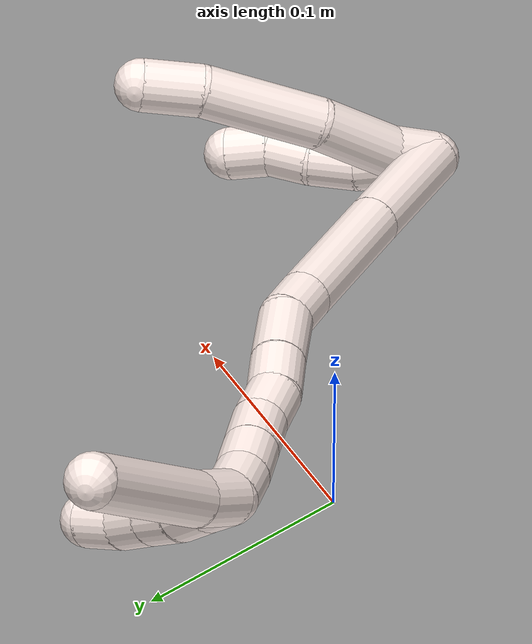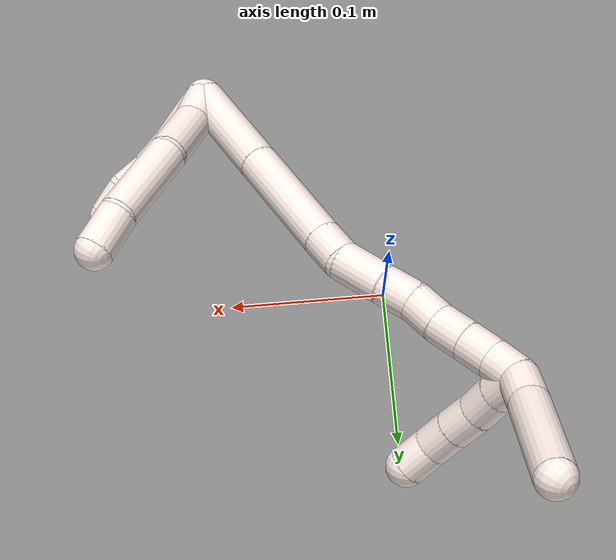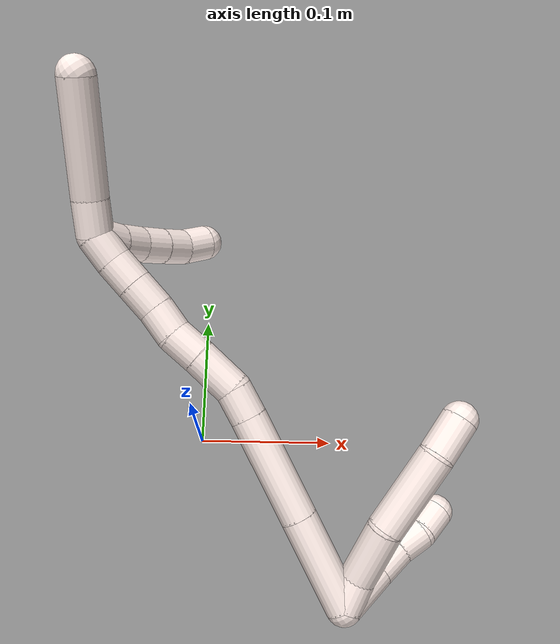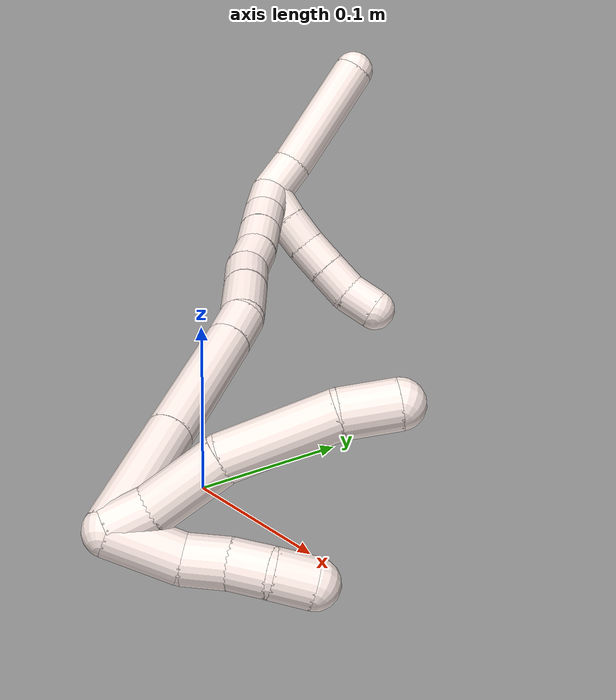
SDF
<sdf version="1.7">
 <world name="default">
  <model name="11">
   <static>0</static>
   <link name="11">
    <collision name="collision-cylinder-e_1_2_8">
     <pose>0.002705 0.009227 0.005712 -1.01653 0.244285 -0.136556</pose>
     <geometry><cylinder><radius>0.0125</radius><length>0.022368</length></cylinder></geometry>
     <surface>
      <friction><ode><mu>1.16</mu><mu2>1.16</mu2><slip1>0</slip1><slip2>0</slip2></ode></friction>
      <contact><ode><kp>1e+06</kp><kd>1</kd><max_vel>0</max_vel><min_depth>0.001</min_depth></ode></contact>
     </surface>
    </collision>
    <visual name="visual-cylinder-e_1_2_8">
     <pose>0.002705 0.009227 0.005712 -1.01653 0.244285 -0.136556</pose>
     <geometry><cylinder><radius>0.0125</radius><length>0.022368</length></cylinder></geometry>
     <material><ambient>1 0.933333 0.909804 1</ambient></material>
    </visual>
    <collision name="collision-cylinder-e_2_8_9">
     <pose>0.014883 0.033315 0.021964 -0.953837 0.479474 -0.251272</pose>
     <geometry><cylinder><radius>0.0125</radius><length>0.041068</length></cylinder></geometry>
     <surface>
      <friction><ode><mu>1.16</mu><mu2>1.16</mu2><slip1>0</slip1><slip2>0</slip2></ode></friction>
      <contact><ode><kp>1e+06</kp><kd>1</kd><max_vel>0</max_vel><min_depth>0.001</min_depth></ode></contact>
     </surface>
    </collision>
    <visual name="visual-cylinder-e_2_8_9">
     <pose>0.014883 0.033315 0.021964 -0.953837 0.479474 -0.251272</pose>
     <geometry><cylinder><radius>0.0125</radius><length>0.041068</length></cylinder></geometry>
     <material><ambient>1 0.933333 0.909804 1</ambient></material>
    </visual>
    <collision name="collision-cylinder-e_3_9_10">
     <pose>0.03363 0.073648 0.043055 -1.17812 0.324479 -0.217872</pose>
     <geometry><cylinder><radius>0.0125</radius><length>0.058181</length></cylinder></geometry>
     <surface>
      <friction><ode><mu>1.16</mu><mu2>1.16</mu2><slip1>0</slip1><slip2>0</slip2></ode></friction>
      <contact><ode><kp>1e+06</kp><kd>1</kd><max_vel>0</max_vel><min_depth>0.001</min_depth></ode></contact>
     </surface>
    </collision>
    <visual name="visual-cylinder-e_3_9_10">
     <pose>0.03363 0.073648 0.043055 -1.17812 0.324479 -0.217872</pose>
     <geometry><cylinder><radius>0.0125</radius><length>0.058181</length></cylinder></geometry>
     <material><ambient>1 0.933333 0.909804 1</ambient></material>
    </visual>
    <collision name="collision-cylinder-e_4_10_6">
     <pose>0.044432 0.112588 0.057818 -1.26761 0.107853 -0.079303</pose>
     <geometry><cylinder><radius>0.0125</radius><length>0.028383</length></cylinder></geometry>
     <surface>
      <friction><ode><mu>1.16</mu><mu2>1.16</mu2><slip1>0</slip1><slip2>0</slip2></ode></friction>
      <contact><ode><kp>1e+06</kp><kd>1</kd><max_vel>0</max_vel><min_depth>0.001</min_depth></ode></contact>
     </surface>
    </collision>
    <visual name="visual-cylinder-e_4_10_6">
     <pose>0.044432 0.112588 0.057818 -1.26761 0.107853 -0.079303</pose>
     <geometry><cylinder><radius>0.0125</radius><length>0.028383</length></cylinder></geometry>
     <material><ambient>1 0.933333 0.909804 1</ambient></material>
    </visual>
    <collision name="collision-cylinder-e_1_2_11">
     <pose>-0.004502 0.017984 -0.001513 -1.65474 -0.244452 0.265643</pose>
     <geometry><cylinder><radius>0.0125</radius><length>0.037201</length></cylinder></geometry>
     <surface>
      <friction><ode><mu>1.16</mu><mu2>1.16</mu2><slip1>0</slip1><slip2>0</slip2></ode></friction>
      <contact><ode><kp>1e+06</kp><kd>1</kd><max_vel>0</max_vel><min_depth>0.001</min_depth></ode></contact>
     </surface>
    </collision>
    <visual name="visual-cylinder-e_1_2_11">
     <pose>-0.004502 0.017984 -0.001513 -1.65474 -0.244452 0.265643</pose>
     <geometry><cylinder><radius>0.0125</radius><length>0.037201</length></cylinder></geometry>
     <material><ambient>1 0.933333 0.909804 1</ambient></material>
    </visual>
    <collision name="collision-cylinder-e_2_11_12">
     <pose>-0.008725 0.047148 -0.002425 -1.51706 0.024845 -0.023544</pose>
     <geometry><cylinder><radius>0.0125</radius><length>0.022398</length></cylinder></geometry>
     <surface>
      <friction><ode><mu>1.16</mu><mu2>1.16</mu2><slip1>0</slip1><slip2>0</slip2></ode></friction>
      <contact><ode><kp>1e+06</kp><kd>1</kd><max_vel>0</max_vel><min_depth>0.001</min_depth></ode></contact>
     </surface>
    </collision>
    <visual name="visual-cylinder-e_2_11_12">
     <pose>-0.008725 0.047148 -0.002425 -1.51706 0.024845 -0.023544</pose>
     <geometry><cylinder><radius>0.0125</radius><length>0.022398</length></cylinder></geometry>
     <material><ambient>1 0.933333 0.909804 1</ambient></material>
    </visual>
    <collision name="collision-cylinder-e_3_12_13">
     <pose>-0.007651 0.068258 -0.00306 -1.69464 0.079395 -0.089877</pose>
     <geometry><cylinder><radius>0.0125</radius><length>0.020079</length></cylinder></geometry>
     <surface>
      <friction><ode><mu>1.16</mu><mu2>1.16</mu2><slip1>0</slip1><slip2>0</slip2></ode></friction>
      <contact><ode><kp>1e+06</kp><kd>1</kd><max_vel>0</max_vel><min_depth>0.001</min_depth></ode></contact>
     </surface>
    </collision>
    <visual name="visual-cylinder-e_3_12_13">
     <pose>-0.007651 0.068258 -0.00306 -1.69464 0.079395 -0.089877</pose>
     <geometry><cylinder><radius>0.0125</radius><length>0.020079</length></cylinder></geometry>
     <material><ambient>1 0.933333 0.909804 1</ambient></material>
    </visual>
    <collision name="collision-cylinder-e_4_13_5">
     <pose>-0.008835 0.088154 -0.004121 -1.55321 -0.196132 0.192735</pose>
     <geometry><cylinder><radius>0.0125</radius><length>0.020322</length></cylinder></geometry>
     <surface>
      <friction><ode><mu>1.16</mu><mu2>1.16</mu2><slip1>0</slip1><slip2>0</slip2></ode></friction>
      <contact><ode><kp>1e+06</kp><kd>1</kd><max_vel>0</max_vel><min_depth>0.001</min_depth></ode></contact>
     </surface>
    </collision>
    <visual name="visual-cylinder-e_4_13_5">
     <pose>-0.008835 0.088154 -0.004121 -1.55321 -0.196132 0.192735</pose>
     <geometry><cylinder><radius>0.0125</radius><length>0.020322</length></cylinder></geometry>
     <material><ambient>1 0.933333 0.909804 1</ambient></material>
    </visual>
    <collision name="collision-cylinder-e_1_2_14">
     <pose>-0.00371 0.007182 0.033061 -0.213908 -0.109238 0.01174</pose>
     <geometry><cylinder><radius>0.0125</radius><length>0.06807</length></cylinder></geometry>
     <surface>
      <friction><ode><mu>1.16</mu><mu2>1.16</mu2><slip1>0</slip1><slip2>0</slip2></ode></friction>
      <contact><ode><kp>1e+06</kp><kd>1</kd><max_vel>0</max_vel><min_depth>0.001</min_depth></ode></contact>
     </surface>
    </collision>
    <visual name="visual-cylinder-e_1_2_14">
     <pose>-0.00371 0.007182 0.033061 -0.213908 -0.109238 0.01174</pose>
     <geometry><cylinder><radius>0.0125</radius><length>0.06807</length></cylinder></geometry>
     <material><ambient>1 0.933333 0.909804 1</ambient></material>
    </visual>
    <collision name="collision-cylinder-e_2_14_15">
     <pose>-0.011825 0.022168 0.102455 -0.211594 -0.117969 0.012542</pose>
     <geometry><cylinder><radius>0.0125</radius><length>0.074843</length></cylinder></geometry>
     <surface>
      <friction><ode><mu>1.16</mu><mu2>1.16</mu2><slip1>0</slip1><slip2>0</slip2></ode></friction>
      <contact><ode><kp>1e+06</kp><kd>1</kd><max_vel>0</max_vel><min_depth>0.001</min_depth></ode></contact>
     </surface>
    </collision>
    <visual name="visual-cylinder-e_2_14_15">
     <pose>-0.011825 0.022168 0.102455 -0.211594 -0.117969 0.012542</pose>
     <geometry><cylinder><radius>0.0125</radius><length>0.074843</length></cylinder></geometry>
     <material><ambient>1 0.933333 0.909804 1</ambient></material>
    </visual>
    <collision name="collision-cylinder-e_3_15_16">
     <pose>-0.017461 0.031921 0.14928 -0.183539 -0.114896 0.010585</pose>
     <geometry><cylinder><radius>0.0125</radius><length>0.021486</length></cylinder></geometry>
     <surface>
      <friction><ode><mu>1.16</mu><mu2>1.16</mu2><slip1>0</slip1><slip2>0</slip2></ode></friction>
      <contact><ode><kp>1e+06</kp><kd>1</kd><max_vel>0</max_vel><min_depth>0.001</min_depth></ode></contact>
     </surface>
    </collision>
    <visual name="visual-cylinder-e_3_15_16">
     <pose>-0.017461 0.031921 0.14928 -0.183539 -0.114896 0.010585</pose>
     <geometry><cylinder><radius>0.0125</radius><length>0.021486</length></cylinder></geometry>
     <material><ambient>1 0.933333 0.909804 1</ambient></material>
    </visual>
    <collision name="collision-cylinder-e_4_16_17">
     <pose>-0.022513 0.032095 0.174771 0.117713 -0.247726 -0.014672</pose>
     <geometry><cylinder><radius>0.0125</radius><length>0.031156</length></cylinder></geometry>
     <surface>
      <friction><ode><mu>1.16</mu><mu2>1.16</mu2><slip1>0</slip1><slip2>0</slip2></ode></friction>
      <contact><ode><kp>1e+06</kp><kd>1</kd><max_vel>0</max_vel><min_depth>0.001</min_depth></ode></contact>
     </surface>
    </collision>
    <visual name="visual-cylinder-e_4_16_17">
     <pose>-0.022513 0.032095 0.174771 0.117713 -0.247726 -0.014672</pose>
     <geometry><cylinder><radius>0.0125</radius><length>0.031156</length></cylinder></geometry>
     <material><ambient>1 0.933333 0.909804 1</ambient></material>
    </visual>
    <collision name="collision-cylinder-e_5_17_18">
     <pose>-0.029547 0.028794 0.20019 0.145538 -0.296269 -0.021756</pose>
     <geometry><cylinder><radius>0.0125</radius><length>0.022024</length></cylinder></geometry>
     <surface>
      <friction><ode><mu>1.16</mu><mu2>1.16</mu2><slip1>0</slip1><slip2>0</slip2></ode></friction>
      <contact><ode><kp>1e+06</kp><kd>1</kd><max_vel>0</max_vel><min_depth>0.001</min_depth></ode></contact>
     </surface>
    </collision>
    <visual name="visual-cylinder-e_5_17_18">
     <pose>-0.029547 0.028794 0.20019 0.145538 -0.296269 -0.021756</pose>
     <geometry><cylinder><radius>0.0125</radius><length>0.022024</length></cylinder></geometry>
     <material><ambient>1 0.933333 0.909804 1</ambient></material>
    </visual>
    <collision name="collision-cylinder-e_6_18_19">
     <pose>-0.034924 0.028081 0.220708 -0.080535 -0.210268 0.008503</pose>
     <geometry><cylinder><radius>0.0125</radius><length>0.020717</length></cylinder></geometry>
     <surface>
      <friction><ode><mu>1.16</mu><mu2>1.16</mu2><slip1>0</slip1><slip2>0</slip2></ode></friction>
      <contact><ode><kp>1e+06</kp><kd>1</kd><max_vel>0</max_vel><min_depth>0.001</min_depth></ode></contact>
     </surface>
    </collision>
    <visual name="visual-cylinder-e_6_18_19">
     <pose>-0.034924 0.028081 0.220708 -0.080535 -0.210268 0.008503</pose>
     <geometry><cylinder><radius>0.0125</radius><length>0.020717</length></cylinder></geometry>
     <material><ambient>1 0.933333 0.909804 1</ambient></material>
    </visual>
    <collision name="collision-cylinder-e_7_19_20">
     <pose>-0.038824 0.028425 0.241337 0.044687 -0.163383 -0.003659</pose>
     <geometry><cylinder><radius>0.0125</radius><length>0.02137</length></cylinder></geometry>
     <surface>
      <friction><ode><mu>1.16</mu><mu2>1.16</mu2><slip1>0</slip1><slip2>0</slip2></ode></friction>
      <contact><ode><kp>1e+06</kp><kd>1</kd><max_vel>0</max_vel><min_depth>0.001</min_depth></ode></contact>
     </surface>
    </collision>
    <visual name="visual-cylinder-e_7_19_20">
     <pose>-0.038824 0.028425 0.241337 0.044687 -0.163383 -0.003659</pose>
     <geometry><cylinder><radius>0.0125</radius><length>0.02137</length></cylinder></geometry>
     <material><ambient>1 0.933333 0.909804 1</ambient></material>
    </visual>
    <collision name="collision-cylinder-e_8_20_21">
     <pose>-0.042345 0.027581 0.261788 0.037624 -0.177681 -0.003352</pose>
     <geometry><cylinder><radius>0.0125</radius><length>0.02017</length></cylinder></geometry>
     <surface>
      <friction><ode><mu>1.16</mu><mu2>1.16</mu2><slip1>0</slip1><slip2>0</slip2></ode></friction>
      <contact><ode><kp>1e+06</kp><kd>1</kd><max_vel>0</max_vel><min_depth>0.001</min_depth></ode></contact>
     </surface>
    </collision>
    <visual name="visual-cylinder-e_8_20_21">
     <pose>-0.042345 0.027581 0.261788 0.037624 -0.177681 -0.003352</pose>
     <geometry><cylinder><radius>0.0125</radius><length>0.02017</length></cylinder></geometry>
     <material><ambient>1 0.933333 0.909804 1</ambient></material>
    </visual>
    <collision name="collision-cylinder-e_9_21_1">
     <pose>-0.044804 0.027408 0.281765 -0.01997 -0.067142 0.000671</pose>
     <geometry><cylinder><radius>0.0125</radius><length>0.020165</length></cylinder></geometry>
     <surface>
      <friction><ode><mu>1.16</mu><mu2>1.16</mu2><slip1>0</slip1><slip2>0</slip2></ode></friction>
      <contact><ode><kp>1e+06</kp><kd>1</kd><max_vel>0</max_vel><min_depth>0.001</min_depth></ode></contact>
     </surface>
    </collision>
    <visual name="visual-cylinder-e_9_21_1">
     <pose>-0.044804 0.027408 0.281765 -0.01997 -0.067142 0.000671</pose>
     <geometry><cylinder><radius>0.0125</radius><length>0.020165</length></cylinder></geometry>
     <material><ambient>1 0.933333 0.909804 1</ambient></material>
    </visual>
    <collision name="collision-cylinder-e_1_1_22">
     <pose>-0.050737 0.033939 0.286139 -2.30249 -0.553491 1.13408</pose>
     <geometry><cylinder><radius>0.0125</radius><length>0.02</length></cylinder></geometry>
     <surface>
      <friction><ode><mu>1.16</mu><mu2>1.16</mu2><slip1>0</slip1><slip2>0</slip2></ode></friction>
      <contact><ode><kp>1e+06</kp><kd>1</kd><max_vel>0</max_vel><min_depth>0.001</min_depth></ode></contact>
     </surface>
    </collision>
    <visual name="visual-cylinder-e_1_1_22">
     <pose>-0.050737 0.033939 0.286139 -2.30249 -0.553491 1.13408</pose>
     <geometry><cylinder><radius>0.0125</radius><length>0.02</length></cylinder></geometry>
     <material><ambient>1 0.933333 0.909804 1</ambient></material>
    </visual>
    <collision name="collision-cylinder-e_2_22_23">
     <pose>-0.061401 0.047243 0.275752 -2.16412 -0.57131 1.0092</pose>
     <geometry><cylinder><radius>0.0125</radius><length>0.02</length></cylinder></geometry>
     <surface>
      <friction><ode><mu>1.16</mu><mu2>1.16</mu2><slip1>0</slip1><slip2>0</slip2></ode></friction>
      <contact><ode><kp>1e+06</kp><kd>1</kd><max_vel>0</max_vel><min_depth>0.001</min_depth></ode></contact>
     </surface>
    </collision>
    <visual name="visual-cylinder-e_2_22_23">
     <pose>-0.061401 0.047243 0.275752 -2.16412 -0.57131 1.0092</pose>
     <geometry><cylinder><radius>0.0125</radius><length>0.02</length></cylinder></geometry>
     <material><ambient>1 0.933333 0.909804 1</ambient></material>
    </visual>
    <collision name="collision-cylinder-e_3_23_24">
     <pose>-0.070995 0.061761 0.265994 -2.16111 -0.432014 0.780165</pose>
     <geometry><cylinder><radius>0.0125</radius><length>0.02</length></cylinder></geometry>
     <surface>
      <friction><ode><mu>1.16</mu><mu2>1.16</mu2><slip1>0</slip1><slip2>0</slip2></ode></friction>
      <contact><ode><kp>1e+06</kp><kd>1</kd><max_vel>0</max_vel><min_depth>0.001</min_depth></ode></contact>
     </surface>
    </collision>
    <visual name="visual-cylinder-e_3_23_24">
     <pose>-0.070995 0.061761 0.265994 -2.16111 -0.432014 0.780165</pose>
     <geometry><cylinder><radius>0.0125</radius><length>0.02</length></cylinder></geometry>
     <material><ambient>1 0.933333 0.909804 1</ambient></material>
    </visual>
    <collision name="collision-cylinder-e_4_24_25">
     <pose>-0.079467 0.07695 0.256122 -2.13316 -0.442769 0.774594</pose>
     <geometry><cylinder><radius>0.0125</radius><length>0.02</length></cylinder></geometry>
     <surface>
      <friction><ode><mu>1.16</mu><mu2>1.16</mu2><slip1>0</slip1><slip2>0</slip2></ode></friction>
      <contact><ode><kp>1e+06</kp><kd>1</kd><max_vel>0</max_vel><min_depth>0.001</min_depth></ode></contact>
     </surface>
    </collision>
    <visual name="visual-cylinder-e_4_24_25">
     <pose>-0.079467 0.07695 0.256122 -2.13316 -0.442769 0.774594</pose>
     <geometry><cylinder><radius>0.0125</radius><length>0.02</length></cylinder></geometry>
     <material><ambient>1 0.933333 0.909804 1</ambient></material>
    </visual>
    <collision name="collision-cylinder-e_5_25_4">
     <pose>-0.086132 0.093547 0.247539 -1.96889 -0.240426 0.359755</pose>
     <geometry><cylinder><radius>0.0125</radius><length>0.02</length></cylinder></geometry>
     <surface>
      <friction><ode><mu>1.16</mu><mu2>1.16</mu2><slip1>0</slip1><slip2>0</slip2></ode></friction>
      <contact><ode><kp>1e+06</kp><kd>1</kd><max_vel>0</max_vel><min_depth>0.001</min_depth></ode></contact>
     </surface>
    </collision>
    <visual name="visual-cylinder-e_5_25_4">
     <pose>-0.086132 0.093547 0.247539 -1.96889 -0.240426 0.359755</pose>
     <geometry><cylinder><radius>0.0125</radius><length>0.02</length></cylinder></geometry>
     <material><ambient>1 0.933333 0.909804 1</ambient></material>
    </visual>
    <collision name="collision-cylinder-e_1_1_26">
     <pose>-0.041819 0.032728 0.302231 -0.457053 0.305732 -0.071639</pose>
     <geometry><cylinder><radius>0.0125</radius><length>0.024325</length></cylinder></geometry>
     <surface>
      <friction><ode><mu>1.16</mu><mu2>1.16</mu2><slip1>0</slip1><slip2>0</slip2></ode></friction>
      <contact><ode><kp>1e+06</kp><kd>1</kd><max_vel>0</max_vel><min_depth>0.001</min_depth></ode></contact>
     </surface>
    </collision>
    <visual name="visual-cylinder-e_1_1_26">
     <pose>-0.041819 0.032728 0.302231 -0.457053 0.305732 -0.071639</pose>
     <geometry><cylinder><radius>0.0125</radius><length>0.024325</length></cylinder></geometry>
     <material><ambient>1 0.933333 0.909804 1</ambient></material>
    </visual>
    <collision name="collision-cylinder-e_2_26_3">
     <pose>-0.021812 0.052843 0.343291 -0.455014 0.446736 -0.105085</pose>
     <geometry><cylinder><radius>0.0125</radius><length>0.075675</length></cylinder></geometry>
     <surface>
      <friction><ode><mu>1.16</mu><mu2>1.16</mu2><slip1>0</slip1><slip2>0</slip2></ode></friction>
      <contact><ode><kp>1e+06</kp><kd>1</kd><max_vel>0</max_vel><min_depth>0.001</min_depth></ode></contact>
     </surface>
    </collision>
    <visual name="visual-cylinder-e_2_26_3">
     <pose>-0.021812 0.052843 0.343291 -0.455014 0.446736 -0.105085</pose>
     <geometry><cylinder><radius>0.0125</radius><length>0.075675</length></cylinder></geometry>
     <material><ambient>1 0.933333 0.909804 1</ambient></material>
    </visual>
    <collision name="collision-sphere-3">
     <pose>-0.005465 0.06784 0.373944 0 -0 0</pose>
     <geometry><sphere><radius>0.0125</radius></sphere></geometry>
     <surface>
      <friction><ode><mu>1.16</mu><mu2>1.16</mu2><slip1>0</slip1><slip2>0</slip2></ode></friction>
      <contact><ode><kp>1e+06</kp><kd>1</kd><max_vel>0</max_vel><min_depth>0.001</min_depth></ode></contact>
     </surface>
    </collision>
    <visual name="visual-sphere-3">
     <pose>-0.005465 0.06784 0.373944 0 -0 0</pose>
     <geometry><sphere><radius>0.0125</radius></sphere></geometry>
     <material><ambient>1 0.933333 0.909804 1</ambient></material>
    </visual>
    <collision name="collision-sphere-26">
     <pose>-0.038159 0.037846 0.312639 0 -0 0</pose>
     <geometry><sphere><radius>0.0125</radius></sphere></geometry>
     <surface>
      <friction><ode><mu>1.16</mu><mu2>1.16</mu2><slip1>0</slip1><slip2>0</slip2></ode></friction>
      <contact><ode><kp>1e+06</kp><kd>1</kd><max_vel>0</max_vel><min_depth>0.001</min_depth></ode></contact>
     </surface>
    </collision>
    <visual name="visual-sphere-26">
     <pose>-0.038159 0.037846 0.312639 0 -0 0</pose>
     <geometry><sphere><radius>0.0125</radius></sphere></geometry>
     <material><ambient>1 0.933333 0.909804 1</ambient></material>
    </visual>
    <collision name="collision-sphere-4">
     <pose>-0.088513 0.1025 0.243774 0 -0 0</pose>
     <geometry><sphere><radius>0.0125</radius></sphere></geometry>
     <surface>
      <friction><ode><mu>1.16</mu><mu2>1.16</mu2><slip1>0</slip1><slip2>0</slip2></ode></friction>
      <contact><ode><kp>1e+06</kp><kd>1</kd><max_vel>0</max_vel><min_depth>0.001</min_depth></ode></contact>
     </surface>
    </collision>
    <visual name="visual-sphere-4">
     <pose>-0.088513 0.1025 0.243774 0 -0 0</pose>
     <geometry><sphere><radius>0.0125</radius></sphere></geometry>
     <material><ambient>1 0.933333 0.909804 1</ambient></material>
    </visual>
    <collision name="collision-sphere-25">
     <pose>-0.083751 0.084594 0.251304 0 -0 0</pose>
     <geometry><sphere><radius>0.0125</radius></sphere></geometry>
     <surface>
      <friction><ode><mu>1.16</mu><mu2>1.16</mu2><slip1>0</slip1><slip2>0</slip2></ode></friction>
      <contact><ode><kp>1e+06</kp><kd>1</kd><max_vel>0</max_vel><min_depth>0.001</min_depth></ode></contact>
     </surface>
    </collision>
    <visual name="visual-sphere-25">
     <pose>-0.083751 0.084594 0.251304 0 -0 0</pose>
     <geometry><sphere><radius>0.0125</radius></sphere></geometry>
     <material><ambient>1 0.933333 0.909804 1</ambient></material>
    </visual>
    <collision name="collision-sphere-24">
     <pose>-0.075182 0.069306 0.260939 0 -0 0</pose>
     <geometry><sphere><radius>0.0125</radius></sphere></geometry>
     <surface>
      <friction><ode><mu>1.16</mu><mu2>1.16</mu2><slip1>0</slip1><slip2>0</slip2></ode></friction>
      <contact><ode><kp>1e+06</kp><kd>1</kd><max_vel>0</max_vel><min_depth>0.001</min_depth></ode></contact>
     </surface>
    </collision>
    <visual name="visual-sphere-24">
     <pose>-0.075182 0.069306 0.260939 0 -0 0</pose>
     <geometry><sphere><radius>0.0125</radius></sphere></geometry>
     <material><ambient>1 0.933333 0.909804 1</ambient></material>
    </visual>
    <collision name="collision-sphere-23">
     <pose>-0.066808 0.054217 0.271049 0 -0 0</pose>
     <geometry><sphere><radius>0.0125</radius></sphere></geometry>
     <surface>
      <friction><ode><mu>1.16</mu><mu2>1.16</mu2><slip1>0</slip1><slip2>0</slip2></ode></friction>
      <contact><ode><kp>1e+06</kp><kd>1</kd><max_vel>0</max_vel><min_depth>0.001</min_depth></ode></contact>
     </surface>
    </collision>
    <visual name="visual-sphere-23">
     <pose>-0.066808 0.054217 0.271049 0 -0 0</pose>
     <geometry><sphere><radius>0.0125</radius></sphere></geometry>
     <material><ambient>1 0.933333 0.909804 1</ambient></material>
    </visual>
    <collision name="collision-sphere-22">
     <pose>-0.055993 0.040268 0.280456 0 -0 0</pose>
     <geometry><sphere><radius>0.0125</radius></sphere></geometry>
     <surface>
      <friction><ode><mu>1.16</mu><mu2>1.16</mu2><slip1>0</slip1><slip2>0</slip2></ode></friction>
      <contact><ode><kp>1e+06</kp><kd>1</kd><max_vel>0</max_vel><min_depth>0.001</min_depth></ode></contact>
     </surface>
    </collision>
    <visual name="visual-sphere-22">
     <pose>-0.055993 0.040268 0.280456 0 -0 0</pose>
     <geometry><sphere><radius>0.0125</radius></sphere></geometry>
     <material><ambient>1 0.933333 0.909804 1</ambient></material>
    </visual>
    <collision name="collision-sphere-1">
     <pose>-0.04548 0.027609 0.291823 0 -0 0</pose>
     <geometry><sphere><radius>0.0125</radius></sphere></geometry>
     <surface>
      <friction><ode><mu>1.16</mu><mu2>1.16</mu2><slip1>0</slip1><slip2>0</slip2></ode></friction>
      <contact><ode><kp>1e+06</kp><kd>1</kd><max_vel>0</max_vel><min_depth>0.001</min_depth></ode></contact>
     </surface>
    </collision>
    <visual name="visual-sphere-1">
     <pose>-0.04548 0.027609 0.291823 0 -0 0</pose>
     <geometry><sphere><radius>0.0125</radius></sphere></geometry>
     <material><ambient>1 0.933333 0.909804 1</ambient></material>
    </visual>
    <collision name="collision-sphere-21">
     <pose>-0.044127 0.027208 0.271708 0 -0 0</pose>
     <geometry><sphere><radius>0.0125</radius></sphere></geometry>
     <surface>
      <friction><ode><mu>1.16</mu><mu2>1.16</mu2><slip1>0</slip1><slip2>0</slip2></ode></friction>
      <contact><ode><kp>1e+06</kp><kd>1</kd><max_vel>0</max_vel><min_depth>0.001</min_depth></ode></contact>
     </surface>
    </collision>
    <visual name="visual-sphere-21">
     <pose>-0.044127 0.027208 0.271708 0 -0 0</pose>
     <geometry><sphere><radius>0.0125</radius></sphere></geometry>
     <material><ambient>1 0.933333 0.909804 1</ambient></material>
    </visual>
    <collision name="collision-sphere-11">
     <pose>-0.009004 0.035968 -0.003026 0 -0 0</pose>
     <geometry><sphere><radius>0.0125</radius></sphere></geometry>
     <surface>
      <friction><ode><mu>1.16</mu><mu2>1.16</mu2><slip1>0</slip1><slip2>0</slip2></ode></friction>
      <contact><ode><kp>1e+06</kp><kd>1</kd><max_vel>0</max_vel><min_depth>0.001</min_depth></ode></contact>
     </surface>
    </collision>
    <visual name="visual-sphere-11">
     <pose>-0.009004 0.035968 -0.003026 0 -0 0</pose>
     <geometry><sphere><radius>0.0125</radius></sphere></geometry>
     <material><ambient>1 0.933333 0.909804 1</ambient></material>
    </visual>
    <collision name="collision-sphere-6">
     <pose>0.045959 0.126053 0.062031 0 -0 0</pose>
     <geometry><sphere><radius>0.0125</radius></sphere></geometry>
     <surface>
      <friction><ode><mu>1.16</mu><mu2>1.16</mu2><slip1>0</slip1><slip2>0</slip2></ode></friction>
      <contact><ode><kp>1e+06</kp><kd>1</kd><max_vel>0</max_vel><min_depth>0.001</min_depth></ode></contact>
     </surface>
    </collision>
    <visual name="visual-sphere-6">
     <pose>0.045959 0.126053 0.062031 0 -0 0</pose>
     <geometry><sphere><radius>0.0125</radius></sphere></geometry>
     <material><ambient>1 0.933333 0.909804 1</ambient></material>
    </visual>
    <collision name="collision-sphere-10">
     <pose>0.042904 0.099122 0.053606 0 -0 0</pose>
     <geometry><sphere><radius>0.0125</radius></sphere></geometry>
     <surface>
      <friction><ode><mu>1.16</mu><mu2>1.16</mu2><slip1>0</slip1><slip2>0</slip2></ode></friction>
      <contact><ode><kp>1e+06</kp><kd>1</kd><max_vel>0</max_vel><min_depth>0.001</min_depth></ode></contact>
     </surface>
    </collision>
    <visual name="visual-sphere-10">
     <pose>0.042904 0.099122 0.053606 0 -0 0</pose>
     <geometry><sphere><radius>0.0125</radius></sphere></geometry>
     <material><ambient>1 0.933333 0.909804 1</ambient></material>
    </visual>
    <collision name="collision-sphere-9">
     <pose>0.024355 0.048175 0.032504 0 -0 0</pose>
     <geometry><sphere><radius>0.0125</radius></sphere></geometry>
     <surface>
      <friction><ode><mu>1.16</mu><mu2>1.16</mu2><slip1>0</slip1><slip2>0</slip2></ode></friction>
      <contact><ode><kp>1e+06</kp><kd>1</kd><max_vel>0</max_vel><min_depth>0.001</min_depth></ode></contact>
     </surface>
    </collision>
    <visual name="visual-sphere-9">
     <pose>0.024355 0.048175 0.032504 0 -0 0</pose>
     <geometry><sphere><radius>0.0125</radius></sphere></geometry>
     <material><ambient>1 0.933333 0.909804 1</ambient></material>
    </visual>
    <collision name="collision-sphere-2">
     <geometry><sphere><radius>0.0125</radius></sphere></geometry>
     <surface>
      <friction><ode><mu>1.16</mu><mu2>1.16</mu2><slip1>0</slip1><slip2>0</slip2></ode></friction>
      <contact><ode><kp>1e+06</kp><kd>1</kd><max_vel>0</max_vel><min_depth>0.001</min_depth></ode></contact>
     </surface>
    </collision>
    <visual name="visual-sphere-2">
     <geometry><sphere><radius>0.0125</radius></sphere></geometry>
     <material><ambient>1 0.933333 0.909804 1</ambient></material>
    </visual>
    <collision name="collision-sphere-19">
     <pose>-0.037086 0.028896 0.230805 0 -0 0</pose>
     <geometry><sphere><radius>0.0125</radius></sphere></geometry>
     <surface>
      <friction><ode><mu>1.16</mu><mu2>1.16</mu2><slip1>0</slip1><slip2>0</slip2></ode></friction>
      <contact><ode><kp>1e+06</kp><kd>1</kd><max_vel>0</max_vel><min_depth>0.001</min_depth></ode></contact>
     </surface>
    </collision>
    <visual name="visual-sphere-19">
     <pose>-0.037086 0.028896 0.230805 0 -0 0</pose>
     <geometry><sphere><radius>0.0125</radius></sphere></geometry>
     <material><ambient>1 0.933333 0.909804 1</ambient></material>
    </visual>
    <collision name="collision-sphere-8">
     <pose>0.00541 0.018455 0.011423 0 -0 0</pose>
     <geometry><sphere><radius>0.0125</radius></sphere></geometry>
     <surface>
      <friction><ode><mu>1.16</mu><mu2>1.16</mu2><slip1>0</slip1><slip2>0</slip2></ode></friction>
      <contact><ode><kp>1e+06</kp><kd>1</kd><max_vel>0</max_vel><min_depth>0.001</min_depth></ode></contact>
     </surface>
    </collision>
    <visual name="visual-sphere-8">
     <pose>0.00541 0.018455 0.011423 0 -0 0</pose>
     <geometry><sphere><radius>0.0125</radius></sphere></geometry>
     <material><ambient>1 0.933333 0.909804 1</ambient></material>
    </visual>
    <collision name="collision-sphere-12">
     <pose>-0.008447 0.058327 -0.001824 0 -0 0</pose>
     <geometry><sphere><radius>0.0125</radius></sphere></geometry>
     <surface>
      <friction><ode><mu>1.16</mu><mu2>1.16</mu2><slip1>0</slip1><slip2>0</slip2></ode></friction>
      <contact><ode><kp>1e+06</kp><kd>1</kd><max_vel>0</max_vel><min_depth>0.001</min_depth></ode></contact>
     </surface>
    </collision>
    <visual name="visual-sphere-12">
     <pose>-0.008447 0.058327 -0.001824 0 -0 0</pose>
     <geometry><sphere><radius>0.0125</radius></sphere></geometry>
     <material><ambient>1 0.933333 0.909804 1</ambient></material>
    </visual>
    <collision name="collision-sphere-13">
     <pose>-0.006855 0.078189 -0.004296 0 -0 0</pose>
     <geometry><sphere><radius>0.0125</radius></sphere></geometry>
     <surface>
      <friction><ode><mu>1.16</mu><mu2>1.16</mu2><slip1>0</slip1><slip2>0</slip2></ode></friction>
      <contact><ode><kp>1e+06</kp><kd>1</kd><max_vel>0</max_vel><min_depth>0.001</min_depth></ode></contact>
     </surface>
    </collision>
    <visual name="visual-sphere-13">
     <pose>-0.006855 0.078189 -0.004296 0 -0 0</pose>
     <geometry><sphere><radius>0.0125</radius></sphere></geometry>
     <material><ambient>1 0.933333 0.909804 1</ambient></material>
    </visual>
    <collision name="collision-sphere-5">
     <pose>-0.010815 0.098118 -0.003946 0 -0 0</pose>
     <geometry><sphere><radius>0.0125</radius></sphere></geometry>
     <surface>
      <friction><ode><mu>1.16</mu><mu2>1.16</mu2><slip1>0</slip1><slip2>0</slip2></ode></friction>
      <contact><ode><kp>1e+06</kp><kd>1</kd><max_vel>0</max_vel><min_depth>0.001</min_depth></ode></contact>
     </surface>
    </collision>
    <visual name="visual-sphere-5">
     <pose>-0.010815 0.098118 -0.003946 0 -0 0</pose>
     <geometry><sphere><radius>0.0125</radius></sphere></geometry>
     <material><ambient>1 0.933333 0.909804 1</ambient></material>
    </visual>
    <collision name="collision-sphere-14">
     <pose>-0.007421 0.014364 0.066122 0 -0 0</pose>
     <geometry><sphere><radius>0.0125</radius></sphere></geometry>
     <surface>
      <friction><ode><mu>1.16</mu><mu2>1.16</mu2><slip1>0</slip1><slip2>0</slip2></ode></friction>
      <contact><ode><kp>1e+06</kp><kd>1</kd><max_vel>0</max_vel><min_depth>0.001</min_depth></ode></contact>
     </surface>
    </collision>
    <visual name="visual-sphere-14">
     <pose>-0.007421 0.014364 0.066122 0 -0 0</pose>
     <geometry><sphere><radius>0.0125</radius></sphere></geometry>
     <material><ambient>1 0.933333 0.909804 1</ambient></material>
    </visual>
    <collision name="collision-sphere-15">
     <pose>-0.01623 0.029973 0.138787 0 -0 0</pose>
     <geometry><sphere><radius>0.0125</radius></sphere></geometry>
     <surface>
      <friction><ode><mu>1.16</mu><mu2>1.16</mu2><slip1>0</slip1><slip2>0</slip2></ode></friction>
      <contact><ode><kp>1e+06</kp><kd>1</kd><max_vel>0</max_vel><min_depth>0.001</min_depth></ode></contact>
     </surface>
    </collision>
    <visual name="visual-sphere-15">
     <pose>-0.01623 0.029973 0.138787 0 -0 0</pose>
     <geometry><sphere><radius>0.0125</radius></sphere></geometry>
     <material><ambient>1 0.933333 0.909804 1</ambient></material>
    </visual>
    <collision name="collision-sphere-16">
     <pose>-0.018693 0.033868 0.159773 0 -0 0</pose>
     <geometry><sphere><radius>0.0125</radius></sphere></geometry>
     <surface>
      <friction><ode><mu>1.16</mu><mu2>1.16</mu2><slip1>0</slip1><slip2>0</slip2></ode></friction>
      <contact><ode><kp>1e+06</kp><kd>1</kd><max_vel>0</max_vel><min_depth>0.001</min_depth></ode></contact>
     </surface>
    </collision>
    <visual name="visual-sphere-16">
     <pose>-0.018693 0.033868 0.159773 0 -0 0</pose>
     <geometry><sphere><radius>0.0125</radius></sphere></geometry>
     <material><ambient>1 0.933333 0.909804 1</ambient></material>
    </visual>
    <collision name="collision-sphere-17">
     <pose>-0.026332 0.030321 0.189769 0 -0 0</pose>
     <geometry><sphere><radius>0.0125</radius></sphere></geometry>
     <surface>
      <friction><ode><mu>1.16</mu><mu2>1.16</mu2><slip1>0</slip1><slip2>0</slip2></ode></friction>
      <contact><ode><kp>1e+06</kp><kd>1</kd><max_vel>0</max_vel><min_depth>0.001</min_depth></ode></contact>
     </surface>
    </collision>
    <visual name="visual-sphere-17">
     <pose>-0.026332 0.030321 0.189769 0 -0 0</pose>
     <geometry><sphere><radius>0.0125</radius></sphere></geometry>
     <material><ambient>1 0.933333 0.909804 1</ambient></material>
    </visual>
    <collision name="collision-sphere-18">
     <pose>-0.032762 0.027266 0.21061 0 -0 0</pose>
     <geometry><sphere><radius>0.0125</radius></sphere></geometry>
     <surface>
      <friction><ode><mu>1.16</mu><mu2>1.16</mu2><slip1>0</slip1><slip2>0</slip2></ode></friction>
      <contact><ode><kp>1e+06</kp><kd>1</kd><max_vel>0</max_vel><min_depth>0.001</min_depth></ode></contact>
     </surface>
    </collision>
    <visual name="visual-sphere-18">
     <pose>-0.032762 0.027266 0.21061 0 -0 0</pose>
     <geometry><sphere><radius>0.0125</radius></sphere></geometry>
     <material><ambient>1 0.933333 0.909804 1</ambient></material>
    </visual>
    <collision name="collision-sphere-20">
     <pose>-0.040562 0.027954 0.251869 0 -0 0</pose>
     <geometry><sphere><radius>0.0125</radius></sphere></geometry>
     <surface>
      <friction><ode><mu>1.16</mu><mu2>1.16</mu2><slip1>0</slip1><slip2>0</slip2></ode></friction>
      <contact><ode><kp>1e+06</kp><kd>1</kd><max_vel>0</max_vel><min_depth>0.001</min_depth></ode></contact>
     </surface>
    </collision>
    <visual name="visual-sphere-20">
     <pose>-0.040562 0.027954 0.251869 0 -0 0</pose>
     <geometry><sphere><radius>0.0125</radius></sphere></geometry>
     <material><ambient>1 0.933333 0.909804 1</ambient></material>
    </visual>
    <inertial>
     <pose>-0.016833 0.042363 0.144737 0 -0 0</pose>
     <mass>0.75</mass>
     <inertia>
      <ixx>0.000155</ixx>
      <ixy>0</ixy>
      <ixz>0</ixz>
      <iyy>0.000156</iyy>
      <iyz>0</iyz>
      <izz>-5.5e-05</izz>
     </inertia>
    </inertial>
   </link>
   <pose>0.105852 -0.127054 0.055324 -0.178727 -1.06203 -0.640179</pose>
  </model>
 </world>
</sdf>
